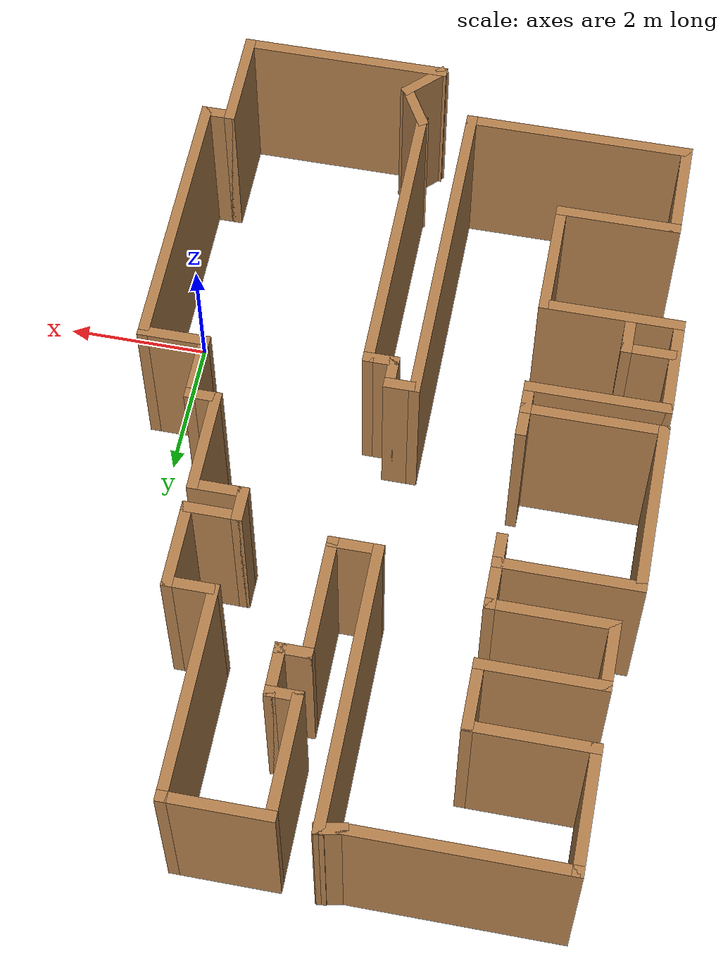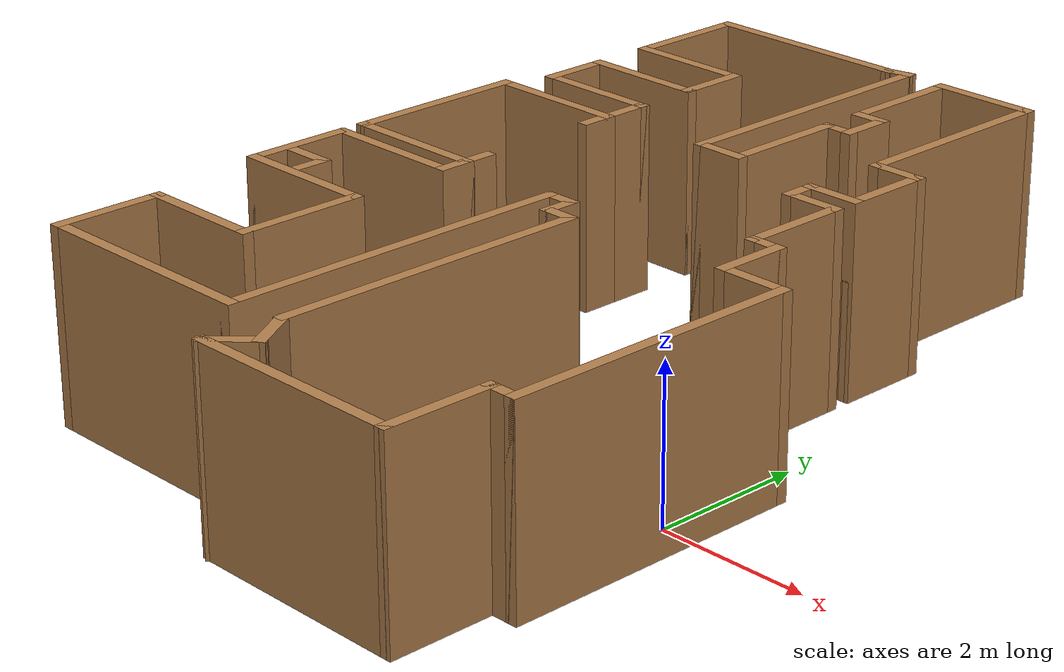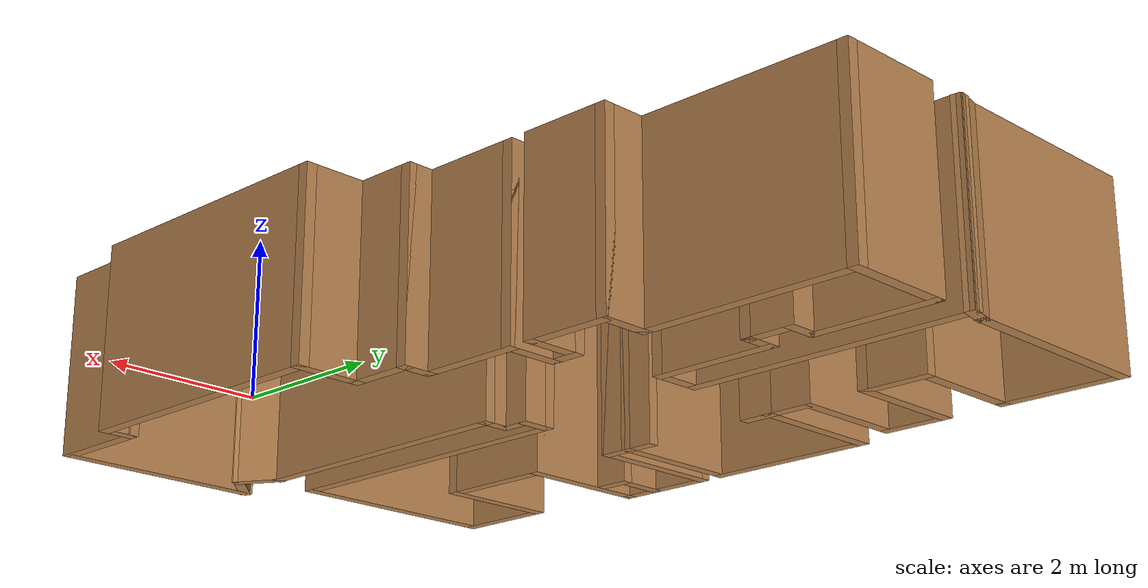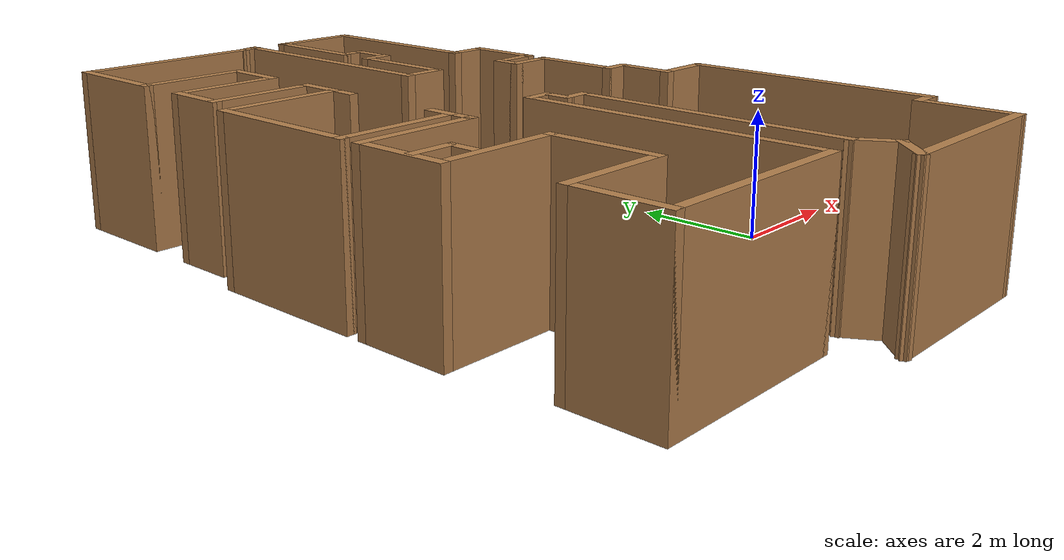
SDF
<?xml version='1.0'?>
<sdf version='1.6'>
  <model name='map_84'>
    <pose frame=''>-3.1757 2.03149 0 0 -0 0</pose>
    <link name='Wall_0'>
      <collision name='Wall_0_Collision'>
        <geometry>
          <box>
            <size>3 0.15 2.5</size>
          </box>
        </geometry>
        <pose frame=''>0 0 1.25 0 -0 0</pose>
      </collision>
      <visual name='Wall_0_Visual'>
        <pose frame=''>0 0 1.25 0 -0 0</pose>
        <geometry>
          <box>
            <size>3 0.15 2.5</size>
          </box>
        </geometry>
        <material>
          <script>
            <uri>file://media/materials/scripts/gazebo.material</uri>
            <name>Gazebo/Wood</name>
          </script>
          <ambient>1 1 1 1</ambient>
        </material>
        <meta>
          <layer>0</layer>
        </meta>
      </visual>
      <pose frame=''>-1.88787 5.82769 0 0 -0 3.14159</pose>
    </link>
    <link name='Wall_1'>
      <collision name='Wall_1_Collision'>
        <geometry>
          <box>
            <size>1.75 0.15 2.5</size>
          </box>
        </geometry>
        <pose frame=''>0 0 1.25 0 -0 0</pose>
      </collision>
      <visual name='Wall_1_Visual'>
        <pose frame=''>0 0 1.25 0 -0 0</pose>
        <geometry>
          <box>
            <size>1.75 0.15 2.5</size>
          </box>
        </geometry>
        <material>
          <script>
            <uri>file://media/materials/scripts/gazebo.material</uri>
            <name>Gazebo/Wood</name>
          </script>
          <ambient>1 1 1 1</ambient>
        </material>
        <meta>
          <layer>0</layer>
        </meta>
      </visual>
      <pose frame=''>-3.31287 5.02769 0 0 -0 -1.5708</pose>
    </link>
    <link name='Wall_10'>
      <collision name='Wall_10_Collision'>
        <geometry>
          <box>
            <size>2 0.15 2.5</size>
          </box>
        </geometry>
        <pose frame=''>0 0 1.25 0 -0 0</pose>
      </collision>
      <visual name='Wall_10_Visual'>
        <pose frame=''>0 0 1.25 0 -0 0</pose>
        <geometry>
          <box>
            <size>2 0.15 2.5</size>
          </box>
        </geometry>
        <material>
          <script>
            <uri>file://media/materials/scripts/gazebo.material</uri>
            <name>Gazebo/Wood</name>
          </script>
          <ambient>1 1 1 1</ambient>
        </material>
        <meta>
          <layer>0</layer>
        </meta>
      </visual>
      <pose frame=''>-2.63787 -0.422313 0 0 -0 0</pose>
    </link>
    <link name='Wall_11'>
      <collision name='Wall_11_Collision'>
        <geometry>
          <box>
            <size>0.5 0.15 2.5</size>
          </box>
        </geometry>
        <pose frame=''>0 0 1.25 0 -0 0</pose>
      </collision>
      <visual name='Wall_11_Visual'>
        <pose frame=''>0 0 1.25 0 -0 0</pose>
        <geometry>
          <box>
            <size>0.5 0.15 2.5</size>
          </box>
        </geometry>
        <material>
          <script>
            <uri>file://media/materials/scripts/gazebo.material</uri>
            <name>Gazebo/Wood</name>
          </script>
          <ambient>1 1 1 1</ambient>
        </material>
        <meta>
          <layer>0</layer>
        </meta>
      </visual>
      <pose frame=''>-1.71287 -0.597313 0 0 -0 -1.5708</pose>
    </link>
    <link name='Wall_12'>
      <collision name='Wall_12_Collision'>
        <geometry>
          <box>
            <size>2 0.15 2.5</size>
          </box>
        </geometry>
        <pose frame=''>0 0 1.25 0 -0 0</pose>
      </collision>
      <visual name='Wall_12_Visual'>
        <pose frame=''>0 0 1.25 0 -0 0</pose>
        <geometry>
          <box>
            <size>2 0.15 2.5</size>
          </box>
        </geometry>
        <material>
          <script>
            <uri>file://media/materials/scripts/gazebo.material</uri>
            <name>Gazebo/Wood</name>
          </script>
          <ambient>1 1 1 1</ambient>
        </material>
        <meta>
          <layer>0</layer>
        </meta>
      </visual>
      <pose frame=''>-2.63787 -0.772313 0 0 -0 3.14159</pose>
    </link>
    <link name='Wall_13'>
      <collision name='Wall_13_Collision'>
        <geometry>
          <box>
            <size>1.5 0.15 2.5</size>
          </box>
        </geometry>
        <pose frame=''>0 0 1.25 0 -0 0</pose>
      </collision>
      <visual name='Wall_13_Visual'>
        <pose frame=''>0 0 1.25 0 -0 0</pose>
        <geometry>
          <box>
            <size>1.5 0.15 2.5</size>
          </box>
        </geometry>
        <material>
          <script>
            <uri>file://media/materials/scripts/gazebo.material</uri>
            <name>Gazebo/Wood</name>
          </script>
          <ambient>1 1 1 1</ambient>
        </material>
        <meta>
          <layer>0</layer>
        </meta>
      </visual>
      <pose frame=''>-3.56287 -1.44731 0 0 -0 -1.5708</pose>
    </link>
    <link name='Wall_14'>
      <collision name='Wall_14_Collision'>
        <geometry>
          <box>
            <size>2 0.15 2.5</size>
          </box>
        </geometry>
        <pose frame=''>0 0 1.25 0 -0 0</pose>
      </collision>
      <visual name='Wall_14_Visual'>
        <pose frame=''>0 0 1.25 0 -0 0</pose>
        <geometry>
          <box>
            <size>2 0.15 2.5</size>
          </box>
        </geometry>
        <material>
          <script>
            <uri>file://media/materials/scripts/gazebo.material</uri>
            <name>Gazebo/Wood</name>
          </script>
          <ambient>1 1 1 1</ambient>
        </material>
        <meta>
          <layer>0</layer>
        </meta>
      </visual>
      <pose frame=''>-2.63787 -2.12231 0 0 -0 0</pose>
    </link>
    <link name='Wall_17'>
      <collision name='Wall_17_Collision'>
        <geometry>
          <box>
            <size>1.75 0.15 2.5</size>
          </box>
        </geometry>
        <pose frame=''>0 0 1.25 0 -0 0</pose>
      </collision>
      <visual name='Wall_17_Visual'>
        <pose frame=''>0 0 1.25 0 -0 0</pose>
        <geometry>
          <box>
            <size>1.75 0.15 2.5</size>
          </box>
        </geometry>
        <material>
          <script>
            <uri>file://media/materials/scripts/gazebo.material</uri>
            <name>Gazebo/Wood</name>
          </script>
          <ambient>1 1 1 1</ambient>
        </material>
        <meta>
          <layer>0</layer>
        </meta>
      </visual>
      <pose frame=''>-1.71287 -2.92231 0 0 -0 -1.5708</pose>
    </link>
    <link name='Wall_18'>
      <collision name='Wall_18_Collision'>
        <geometry>
          <box>
            <size>1.75 0.15 2.5</size>
          </box>
        </geometry>
        <pose frame=''>0 0 1.25 0 -0 0</pose>
      </collision>
      <visual name='Wall_18_Visual'>
        <pose frame=''>0 0 1.25 0 -0 0</pose>
        <geometry>
          <box>
            <size>1.75 0.15 2.5</size>
          </box>
        </geometry>
        <material>
          <script>
            <uri>file://media/materials/scripts/gazebo.material</uri>
            <name>Gazebo/Wood</name>
          </script>
          <ambient>1 1 1 1</ambient>
        </material>
        <meta>
          <layer>0</layer>
        </meta>
      </visual>
      <pose frame=''>-2.51287 -3.72231 0 0 -0 3.14159</pose>
    </link>
    <link name='Wall_19'>
      <collision name='Wall_19_Collision'>
        <geometry>
          <box>
            <size>1.5 0.15 2.5</size>
          </box>
        </geometry>
        <pose frame=''>0 0 1.25 0 -0 0</pose>
      </collision>
      <visual name='Wall_19_Visual'>
        <pose frame=''>0 0 1.25 0 -0 0</pose>
        <geometry>
          <box>
            <size>1.5 0.15 2.5</size>
          </box>
        </geometry>
        <material>
          <script>
            <uri>file://media/materials/scripts/gazebo.material</uri>
            <name>Gazebo/Wood</name>
          </script>
          <ambient>1 1 1 1</ambient>
        </material>
        <meta>
          <layer>0</layer>
        </meta>
      </visual>
      <pose frame=''>-3.31287 -4.39731 0 0 -0 -1.5708</pose>
    </link>
    <link name='Wall_2'>
      <collision name='Wall_2_Collision'>
        <geometry>
          <box>
            <size>1.75 0.15 2.5</size>
          </box>
        </geometry>
        <pose frame=''>0 0 1.25 0 -0 0</pose>
      </collision>
      <visual name='Wall_2_Visual'>
        <pose frame=''>0 0 1.25 0 -0 0</pose>
        <geometry>
          <box>
            <size>1.75 0.15 2.5</size>
          </box>
        </geometry>
        <material>
          <script>
            <uri>file://media/materials/scripts/gazebo.material</uri>
            <name>Gazebo/Wood</name>
          </script>
          <ambient>1 1 1 1</ambient>
        </material>
        <meta>
          <layer>0</layer>
        </meta>
      </visual>
      <pose frame=''>-2.51287 4.22769 0 0 -0 0</pose>
    </link>
    <link name='Wall_20'>
      <collision name='Wall_20_Collision'>
        <geometry>
          <box>
            <size>3.25 0.15 2.5</size>
          </box>
        </geometry>
        <pose frame=''>0 0 1.25 0 -0 0</pose>
      </collision>
      <visual name='Wall_20_Visual'>
        <pose frame=''>0 0 1.25 0 -0 0</pose>
        <geometry>
          <box>
            <size>3.25 0.15 2.5</size>
          </box>
        </geometry>
        <material>
          <script>
            <uri>file://media/materials/scripts/gazebo.material</uri>
            <name>Gazebo/Wood</name>
          </script>
          <ambient>1 1 1 1</ambient>
        </material>
        <meta>
          <layer>0</layer>
        </meta>
      </visual>
      <pose frame=''>-1.76287 -5.07231 0 0 -0 0</pose>
    </link>
    <link name='Wall_23'>
      <collision name='Wall_23_Collision'>
        <geometry>
          <box>
            <size>0.75 0.15 2.5</size>
          </box>
        </geometry>
        <pose frame=''>0 0 1.25 0 -0 0</pose>
      </collision>
      <visual name='Wall_23_Visual'>
        <pose frame=''>0 0 1.25 0 -0 0</pose>
        <geometry>
          <box>
            <size>0.75 0.15 2.5</size>
          </box>
        </geometry>
        <material>
          <script>
            <uri>file://media/materials/scripts/gazebo.material</uri>
            <name>Gazebo/Wood</name>
          </script>
          <ambient>1 1 1 1</ambient>
        </material>
        <meta>
          <layer>0</layer>
        </meta>
      </visual>
      <pose frame=''>-3.20614 -1.62308 0 0 -0 0</pose>
    </link>
    <link name='Wall_24'>
      <collision name='Wall_24_Collision'>
        <geometry>
          <box>
            <size>0.5 0.15 2.5</size>
          </box>
        </geometry>
        <pose frame=''>0 0 1.25 0 -0 0</pose>
      </collision>
      <visual name='Wall_24_Visual'>
        <pose frame=''>0 0 1.25 0 -0 0</pose>
        <geometry>
          <box>
            <size>0.5 0.15 2.5</size>
          </box>
        </geometry>
        <material>
          <script>
            <uri>file://media/materials/scripts/gazebo.material</uri>
            <name>Gazebo/Wood</name>
          </script>
          <ambient>1 1 1 1</ambient>
        </material>
        <meta>
          <layer>0</layer>
        </meta>
      </visual>
      <pose frame=''>-2.90614 -1.79808 0 0 -0 -1.5708</pose>
    </link>
    <link name='Wall_28'>
      <collision name='Wall_28_Collision'>
        <geometry>
          <box>
            <size>4.75 0.15 2.5</size>
          </box>
        </geometry>
        <pose frame=''>0 0 1.25 0 -0 0</pose>
      </collision>
      <visual name='Wall_28_Visual'>
        <pose frame=''>0 0 1.25 0 -0 0</pose>
        <geometry>
          <box>
            <size>4.75 0.15 2.5</size>
          </box>
        </geometry>
        <material>
          <script>
            <uri>file://media/materials/scripts/gazebo.material</uri>
            <name>Gazebo/Wood</name>
          </script>
          <ambient>1 1 1 1</ambient>
        </material>
        <meta>
          <layer>0</layer>
        </meta>
      </visual>
      <pose frame=''>-0.212868 -2.77231 0 0 -0 1.5708</pose>
    </link>
    <link name='Wall_29'>
      <collision name='Wall_29_Collision'>
        <geometry>
          <box>
            <size>0.5 0.15 2.5</size>
          </box>
        </geometry>
        <pose frame=''>0 0 1.25 0 -0 0</pose>
      </collision>
      <visual name='Wall_29_Visual'>
        <pose frame=''>0 0 1.25 0 -0 0</pose>
        <geometry>
          <box>
            <size>0.5 0.15 2.5</size>
          </box>
        </geometry>
        <material>
          <script>
            <uri>file://media/materials/scripts/gazebo.material</uri>
            <name>Gazebo/Wood</name>
          </script>
          <ambient>1 1 1 1</ambient>
        </material>
        <meta>
          <layer>0</layer>
        </meta>
      </visual>
      <pose frame=''>-0.037868 -0.472313 0 0 -0 0</pose>
    </link>
    <link name='Wall_3'>
      <collision name='Wall_3_Collision'>
        <geometry>
          <box>
            <size>1 0.15 2.5</size>
          </box>
        </geometry>
        <pose frame=''>0 0 1.25 0 -0 0</pose>
      </collision>
      <visual name='Wall_3_Visual'>
        <pose frame=''>0 0 1.25 0 -0 0</pose>
        <geometry>
          <box>
            <size>1 0.15 2.5</size>
          </box>
        </geometry>
        <material>
          <script>
            <uri>file://media/materials/scripts/gazebo.material</uri>
            <name>Gazebo/Wood</name>
          </script>
          <ambient>1 1 1 1</ambient>
        </material>
        <meta>
          <layer>0</layer>
        </meta>
      </visual>
      <pose frame=''>-1.71287 3.80269 0 0 -0 -1.5708</pose>
    </link>
    <link name='Wall_30'>
      <collision name='Wall_30_Collision'>
        <geometry>
          <box>
            <size>0.5 0.15 2.5</size>
          </box>
        </geometry>
        <pose frame=''>0 0 1.25 0 -0 0</pose>
      </collision>
      <visual name='Wall_30_Visual'>
        <pose frame=''>0 0 1.25 0 -0 0</pose>
        <geometry>
          <box>
            <size>0.5 0.15 2.5</size>
          </box>
        </geometry>
        <material>
          <script>
            <uri>file://media/materials/scripts/gazebo.material</uri>
            <name>Gazebo/Wood</name>
          </script>
          <ambient>1 1 1 1</ambient>
        </material>
        <meta>
          <layer>0</layer>
        </meta>
      </visual>
      <pose frame=''>0.137132 -0.647313 0 0 -0 -1.5708</pose>
    </link>
    <link name='Wall_31'>
      <collision name='Wall_31_Collision'>
        <geometry>
          <box>
            <size>0.5 0.15 2.5</size>
          </box>
        </geometry>
        <pose frame=''>0 0 1.25 0 -0 0</pose>
      </collision>
      <visual name='Wall_31_Visual'>
        <pose frame=''>0 0 1.25 0 -0 0</pose>
        <geometry>
          <box>
            <size>0.5 0.15 2.5</size>
          </box>
        </geometry>
        <material>
          <script>
            <uri>file://media/materials/scripts/gazebo.material</uri>
            <name>Gazebo/Wood</name>
          </script>
          <ambient>1 1 1 1</ambient>
        </material>
        <meta>
          <layer>0</layer>
        </meta>
      </visual>
      <pose frame=''>0.312132 -0.822313 0 0 -0 0</pose>
    </link>
    <link name='Wall_32'>
      <collision name='Wall_32_Collision'>
        <geometry>
          <box>
            <size>4.25 0.15 2.5</size>
          </box>
        </geometry>
        <pose frame=''>0 0 1.25 0 -0 0</pose>
      </collision>
      <visual name='Wall_32_Visual'>
        <pose frame=''>0 0 1.25 0 -0 0</pose>
        <geometry>
          <box>
            <size>4.25 0.15 2.5</size>
          </box>
        </geometry>
        <material>
          <script>
            <uri>file://media/materials/scripts/gazebo.material</uri>
            <name>Gazebo/Wood</name>
          </script>
          <ambient>1 1 1 1</ambient>
        </material>
        <meta>
          <layer>0</layer>
        </meta>
      </visual>
      <pose frame=''>0.487132 -2.87231 0 0 -0 -1.5708</pose>
    </link>
    <link name='Wall_37'>
      <collision name='Wall_37_Collision'>
        <geometry>
          <box>
            <size>0.75 0.15 2.5</size>
          </box>
        </geometry>
        <pose frame=''>0 0 1.25 0 -0 0</pose>
      </collision>
      <visual name='Wall_37_Visual'>
        <pose frame=''>0 0 1.25 0 -0 0</pose>
        <geometry>
          <box>
            <size>0.75 0.15 2.5</size>
          </box>
        </geometry>
        <material>
          <script>
            <uri>file://media/materials/scripts/gazebo.material</uri>
            <name>Gazebo/Wood</name>
          </script>
          <ambient>1 1 1 1</ambient>
        </material>
        <meta>
          <layer>0</layer>
        </meta>
      </visual>
      <pose frame=''>0.637132 -5.18212 0 0 -0 -1.0472</pose>
    </link>
    <link name='Wall_38'>
      <collision name='Wall_38_Collision'>
        <geometry>
          <box>
            <size>0.75 0.15 2.5</size>
          </box>
        </geometry>
        <pose frame=''>0 0 1.25 0 -0 0</pose>
      </collision>
      <visual name='Wall_38_Visual'>
        <pose frame=''>0 0 1.25 0 -0 0</pose>
        <geometry>
          <box>
            <size>0.75 0.15 2.5</size>
          </box>
        </geometry>
        <material>
          <script>
            <uri>file://media/materials/scripts/gazebo.material</uri>
            <name>Gazebo/Wood</name>
          </script>
          <ambient>1 1 1 1</ambient>
        </material>
        <meta>
          <layer>0</layer>
        </meta>
      </visual>
      <pose frame=''>0.575 -5.65406 0 0 -0 -2.35619</pose>
    </link>
    <link name='Wall_39'>
      <collision name='Wall_39_Collision'>
        <geometry>
          <box>
            <size>3 0.15 2.5</size>
          </box>
        </geometry>
        <pose frame=''>0 0 1.25 0 -0 0</pose>
      </collision>
      <visual name='Wall_39_Visual'>
        <pose frame=''>0 0 1.25 0 -0 0</pose>
        <geometry>
          <box>
            <size>3 0.15 2.5</size>
          </box>
        </geometry>
        <material>
          <script>
            <uri>file://media/materials/scripts/gazebo.material</uri>
            <name>Gazebo/Wood</name>
          </script>
          <ambient>1 1 1 1</ambient>
        </material>
        <meta>
          <layer>0</layer>
        </meta>
      </visual>
      <pose frame=''>1.78787 -5.86619 0 0 -0 0</pose>
    </link>
    <link name='Wall_4'>
      <collision name='Wall_4_Collision'>
        <geometry>
          <box>
            <size>1.75 0.15 2.5</size>
          </box>
        </geometry>
        <pose frame=''>0 0 1.25 0 -0 0</pose>
      </collision>
      <visual name='Wall_4_Visual'>
        <pose frame=''>0 0 1.25 0 -0 0</pose>
        <geometry>
          <box>
            <size>1.75 0.15 2.5</size>
          </box>
        </geometry>
        <material>
          <script>
            <uri>file://media/materials/scripts/gazebo.material</uri>
            <name>Gazebo/Wood</name>
          </script>
          <ambient>1 1 1 1</ambient>
        </material>
        <meta>
          <layer>0</layer>
        </meta>
      </visual>
      <pose frame=''>-2.51287 3.37769 0 0 -0 3.14159</pose>
    </link>
    <link name='Wall_40'>
      <collision name='Wall_40_Collision'>
        <geometry>
          <box>
            <size>1.5 0.15 2.5</size>
          </box>
        </geometry>
        <pose frame=''>0 0 1.25 0 -0 0</pose>
      </collision>
      <visual name='Wall_40_Visual'>
        <pose frame=''>0 0 1.25 0 -0 0</pose>
        <geometry>
          <box>
            <size>1.5 0.15 2.5</size>
          </box>
        </geometry>
        <material>
          <script>
            <uri>file://media/materials/scripts/gazebo.material</uri>
            <name>Gazebo/Wood</name>
          </script>
          <ambient>1 1 1 1</ambient>
        </material>
        <meta>
          <layer>0</layer>
        </meta>
      </visual>
      <pose frame=''>3.21287 -5.19119 0 0 -0 1.5708</pose>
    </link>
    <link name='Wall_41'>
      <collision name='Wall_41_Collision'>
        <geometry>
          <box>
            <size>0.5 0.15 2.5</size>
          </box>
        </geometry>
        <pose frame=''>0 0 1.25 0 -0 0</pose>
      </collision>
      <visual name='Wall_41_Visual'>
        <pose frame=''>0 0 1.25 0 -0 0</pose>
        <geometry>
          <box>
            <size>0.5 0.15 2.5</size>
          </box>
        </geometry>
        <material>
          <script>
            <uri>file://media/materials/scripts/gazebo.material</uri>
            <name>Gazebo/Wood</name>
          </script>
          <ambient>1 1 1 1</ambient>
        </material>
        <meta>
          <layer>0</layer>
        </meta>
      </visual>
      <pose frame=''>3.38787 -4.51619 0 0 -0 0</pose>
    </link>
    <link name='Wall_42'>
      <collision name='Wall_42_Collision'>
        <geometry>
          <box>
            <size>4 0.15 2.5</size>
          </box>
        </geometry>
        <pose frame=''>0 0 1.25 0 -0 0</pose>
      </collision>
      <visual name='Wall_42_Visual'>
        <pose frame=''>0 0 1.25 0 -0 0</pose>
        <geometry>
          <box>
            <size>4 0.15 2.5</size>
          </box>
        </geometry>
        <material>
          <script>
            <uri>file://media/materials/scripts/gazebo.material</uri>
            <name>Gazebo/Wood</name>
          </script>
          <ambient>1 1 1 1</ambient>
        </material>
        <meta>
          <layer>0</layer>
        </meta>
      </visual>
      <pose frame=''>3.56287 -2.59119 0 0 -0 1.5708</pose>
    </link>
    <link name='Wall_43'>
      <collision name='Wall_43_Collision'>
        <geometry>
          <box>
            <size>1 0.15 2.5</size>
          </box>
        </geometry>
        <pose frame=''>0 0 1.25 0 -0 0</pose>
      </collision>
      <visual name='Wall_43_Visual'>
        <pose frame=''>0 0 1.25 0 -0 0</pose>
        <geometry>
          <box>
            <size>1 0.15 2.5</size>
          </box>
        </geometry>
        <material>
          <script>
            <uri>file://media/materials/scripts/gazebo.material</uri>
            <name>Gazebo/Wood</name>
          </script>
          <ambient>1 1 1 1</ambient>
        </material>
        <meta>
          <layer>0</layer>
        </meta>
      </visual>
      <pose frame=''>3.13787 -0.666192 0 0 -0 3.14159</pose>
    </link>
    <link name='Wall_44'>
      <collision name='Wall_44_Collision'>
        <geometry>
          <box>
            <size>1 0.15 2.5</size>
          </box>
        </geometry>
        <pose frame=''>0 0 1.25 0 -0 0</pose>
      </collision>
      <visual name='Wall_44_Visual'>
        <pose frame=''>0 0 1.25 0 -0 0</pose>
        <geometry>
          <box>
            <size>1 0.15 2.5</size>
          </box>
        </geometry>
        <material>
          <script>
            <uri>file://media/materials/scripts/gazebo.material</uri>
            <name>Gazebo/Wood</name>
          </script>
          <ambient>1 1 1 1</ambient>
        </material>
        <meta>
          <layer>0</layer>
        </meta>
      </visual>
      <pose frame=''>2.71287 -0.241192 0 0 -0 1.5708</pose>
    </link>
    <link name='Wall_45'>
      <collision name='Wall_45_Collision'>
        <geometry>
          <box>
            <size>0.5 0.15 2.5</size>
          </box>
        </geometry>
        <pose frame=''>0 0 1.25 0 -0 0</pose>
      </collision>
      <visual name='Wall_45_Visual'>
        <pose frame=''>0 0 1.25 0 -0 0</pose>
        <geometry>
          <box>
            <size>0.5 0.15 2.5</size>
          </box>
        </geometry>
        <material>
          <script>
            <uri>file://media/materials/scripts/gazebo.material</uri>
            <name>Gazebo/Wood</name>
          </script>
          <ambient>1 1 1 1</ambient>
        </material>
        <meta>
          <layer>0</layer>
        </meta>
      </visual>
      <pose frame=''>2.53787 0.183808 0 0 -0 3.14159</pose>
    </link>
    <link name='Wall_46'>
      <collision name='Wall_46_Collision'>
        <geometry>
          <box>
            <size>1.5 0.15 2.5</size>
          </box>
        </geometry>
        <pose frame=''>0 0 1.25 0 -0 0</pose>
      </collision>
      <visual name='Wall_46_Visual'>
        <pose frame=''>0 0 1.25 0 -0 0</pose>
        <geometry>
          <box>
            <size>1.5 0.15 2.5</size>
          </box>
        </geometry>
        <material>
          <script>
            <uri>file://media/materials/scripts/gazebo.material</uri>
            <name>Gazebo/Wood</name>
          </script>
          <ambient>1 1 1 1</ambient>
        </material>
        <meta>
          <layer>0</layer>
        </meta>
      </visual>
      <pose frame=''>2.36287 0.858808 0 0 -0 1.5708</pose>
    </link>
    <link name='Wall_5'>
      <collision name='Wall_5_Collision'>
        <geometry>
          <box>
            <size>1 0.15 2.5</size>
          </box>
        </geometry>
        <pose frame=''>0 0 1.25 0 -0 0</pose>
      </collision>
      <visual name='Wall_5_Visual'>
        <pose frame=''>0 0 1.25 0 -0 0</pose>
        <geometry>
          <box>
            <size>1 0.15 2.5</size>
          </box>
        </geometry>
        <material>
          <script>
            <uri>file://media/materials/scripts/gazebo.material</uri>
            <name>Gazebo/Wood</name>
          </script>
          <ambient>1 1 1 1</ambient>
        </material>
        <meta>
          <layer>0</layer>
        </meta>
      </visual>
      <pose frame=''>-3.31287 2.95269 0 0 -0 -1.5708</pose>
    </link>
    <link name='Wall_50'>
      <collision name='Wall_50_Collision'>
        <geometry>
          <box>
            <size>1.25 0.15 2.5</size>
          </box>
        </geometry>
        <pose frame=''>0 0 1.25 0 -0 0</pose>
      </collision>
      <visual name='Wall_50_Visual'>
        <pose frame=''>0 0 1.25 0 -0 0</pose>
        <geometry>
          <box>
            <size>1.25 0.15 2.5</size>
          </box>
        </geometry>
        <material>
          <script>
            <uri>file://media/materials/scripts/gazebo.material</uri>
            <name>Gazebo/Wood</name>
          </script>
          <ambient>1 1 1 1</ambient>
        </material>
        <meta>
          <layer>0</layer>
        </meta>
      </visual>
      <pose frame=''>2.36287 2.43381 0 0 -0 1.5708</pose>
    </link>
    <link name='Wall_51'>
      <collision name='Wall_51_Collision'>
        <geometry>
          <box>
            <size>0.75 0.15 2.5</size>
          </box>
        </geometry>
        <pose frame=''>0 0 1.25 0 -0 0</pose>
      </collision>
      <visual name='Wall_51_Visual'>
        <pose frame=''>0 0 1.25 0 -0 0</pose>
        <geometry>
          <box>
            <size>0.75 0.15 2.5</size>
          </box>
        </geometry>
        <material>
          <script>
            <uri>file://media/materials/scripts/gazebo.material</uri>
            <name>Gazebo/Wood</name>
          </script>
          <ambient>1 1 1 1</ambient>
        </material>
        <meta>
          <layer>0</layer>
        </meta>
      </visual>
      <pose frame=''>2.06287 2.98381 0 0 -0 3.14159</pose>
    </link>
    <link name='Wall_52'>
      <collision name='Wall_52_Collision'>
        <geometry>
          <box>
            <size>3 0.15 2.5</size>
          </box>
        </geometry>
        <pose frame=''>0 0 1.25 0 -0 0</pose>
      </collision>
      <visual name='Wall_52_Visual'>
        <pose frame=''>0 0 1.25 0 -0 0</pose>
        <geometry>
          <box>
            <size>3 0.15 2.5</size>
          </box>
        </geometry>
        <material>
          <script>
            <uri>file://media/materials/scripts/gazebo.material</uri>
            <name>Gazebo/Wood</name>
          </script>
          <ambient>1 1 1 1</ambient>
        </material>
        <meta>
          <layer>0</layer>
        </meta>
      </visual>
      <pose frame=''>1.76287 4.40881 0 0 -0 1.5708</pose>
    </link>
    <link name='Wall_53'>
      <collision name='Wall_53_Collision'>
        <geometry>
          <box>
            <size>1.5 0.15 2.5</size>
          </box>
        </geometry>
        <pose frame=''>0 0 1.25 0 -0 0</pose>
      </collision>
      <visual name='Wall_53_Visual'>
        <pose frame=''>0 0 1.25 0 -0 0</pose>
        <geometry>
          <box>
            <size>1.5 0.15 2.5</size>
          </box>
        </geometry>
        <material>
          <script>
            <uri>file://media/materials/scripts/gazebo.material</uri>
            <name>Gazebo/Wood</name>
          </script>
          <ambient>1 1 1 1</ambient>
        </material>
        <meta>
          <layer>0</layer>
        </meta>
      </visual>
      <pose frame=''>1.08787 5.83381 0 0 -0 3.14159</pose>
    </link>
    <link name='Wall_54'>
      <collision name='Wall_54_Collision'>
        <geometry>
          <box>
            <size>1.75 0.15 2.5</size>
          </box>
        </geometry>
        <pose frame=''>0 0 1.25 0 -0 0</pose>
      </collision>
      <visual name='Wall_54_Visual'>
        <pose frame=''>0 0 1.25 0 -0 0</pose>
        <geometry>
          <box>
            <size>1.75 0.15 2.5</size>
          </box>
        </geometry>
        <material>
          <script>
            <uri>file://media/materials/scripts/gazebo.material</uri>
            <name>Gazebo/Wood</name>
          </script>
          <ambient>1 1 1 1</ambient>
        </material>
        <meta>
          <layer>0</layer>
        </meta>
      </visual>
      <pose frame=''>0.412868 5.03381 0 0 -0 -1.5708</pose>
    </link>
    <link name='Wall_55'>
      <collision name='Wall_55_Collision'>
        <geometry>
          <box>
            <size>0.5 0.15 2.5</size>
          </box>
        </geometry>
        <pose frame=''>0 0 1.25 0 -0 0</pose>
      </collision>
      <visual name='Wall_55_Visual'>
        <pose frame=''>0 0 1.25 0 -0 0</pose>
        <geometry>
          <box>
            <size>0.5 0.15 2.5</size>
          </box>
        </geometry>
        <material>
          <script>
            <uri>file://media/materials/scripts/gazebo.material</uri>
            <name>Gazebo/Wood</name>
          </script>
          <ambient>1 1 1 1</ambient>
        </material>
        <meta>
          <layer>0</layer>
        </meta>
      </visual>
      <pose frame=''>0.587868 4.23381 0 0 -0 0</pose>
    </link>
    <link name='Wall_56'>
      <collision name='Wall_56_Collision'>
        <geometry>
          <box>
            <size>0.75 0.15 2.5</size>
          </box>
        </geometry>
        <pose frame=''>0 0 1.25 0 -0 0</pose>
      </collision>
      <visual name='Wall_56_Visual'>
        <pose frame=''>0 0 1.25 0 -0 0</pose>
        <geometry>
          <box>
            <size>0.75 0.15 2.5</size>
          </box>
        </geometry>
        <material>
          <script>
            <uri>file://media/materials/scripts/gazebo.material</uri>
            <name>Gazebo/Wood</name>
          </script>
          <ambient>1 1 1 1</ambient>
        </material>
        <meta>
          <layer>0</layer>
        </meta>
      </visual>
      <pose frame=''>0.762868 3.93381 0 0 -0 -1.5708</pose>
    </link>
    <link name='Wall_57'>
      <collision name='Wall_57_Collision'>
        <geometry>
          <box>
            <size>0.5 0.15 2.5</size>
          </box>
        </geometry>
        <pose frame=''>0 0 1.25 0 -0 0</pose>
      </collision>
      <visual name='Wall_57_Visual'>
        <pose frame=''>0 0 1.25 0 -0 0</pose>
        <geometry>
          <box>
            <size>0.5 0.15 2.5</size>
          </box>
        </geometry>
        <material>
          <script>
            <uri>file://media/materials/scripts/gazebo.material</uri>
            <name>Gazebo/Wood</name>
          </script>
          <ambient>1 1 1 1</ambient>
        </material>
        <meta>
          <layer>0</layer>
        </meta>
      </visual>
      <pose frame=''>0.587868 3.63381 0 0 -0 3.14159</pose>
    </link>
    <link name='Wall_58'>
      <collision name='Wall_58_Collision'>
        <geometry>
          <box>
            <size>1.75 0.15 2.5</size>
          </box>
        </geometry>
        <pose frame=''>0 0 1.25 0 -0 0</pose>
      </collision>
      <visual name='Wall_58_Visual'>
        <pose frame=''>0 0 1.25 0 -0 0</pose>
        <geometry>
          <box>
            <size>1.75 0.15 2.5</size>
          </box>
        </geometry>
        <material>
          <script>
            <uri>file://media/materials/scripts/gazebo.material</uri>
            <name>Gazebo/Wood</name>
          </script>
          <ambient>1 1 1 1</ambient>
        </material>
        <meta>
          <layer>0</layer>
        </meta>
      </visual>
      <pose frame=''>0.412868 2.83381 0 0 -0 -1.5708</pose>
    </link>
    <link name='Wall_59'>
      <collision name='Wall_59_Collision'>
        <geometry>
          <box>
            <size>0.75 0.15 2.5</size>
          </box>
        </geometry>
        <pose frame=''>0 0 1.25 0 -0 0</pose>
      </collision>
      <visual name='Wall_59_Visual'>
        <pose frame=''>0 0 1.25 0 -0 0</pose>
        <geometry>
          <box>
            <size>0.75 0.15 2.5</size>
          </box>
        </geometry>
        <material>
          <script>
            <uri>file://media/materials/scripts/gazebo.material</uri>
            <name>Gazebo/Wood</name>
          </script>
          <ambient>1 1 1 1</ambient>
        </material>
        <meta>
          <layer>0</layer>
        </meta>
      </visual>
      <pose frame=''>0.112868 2.03381 0 0 -0 3.14159</pose>
    </link>
    <link name='Wall_6'>
      <collision name='Wall_6_Collision'>
        <geometry>
          <box>
            <size>1.75 0.15 2.5</size>
          </box>
        </geometry>
        <pose frame=''>0 0 1.25 0 -0 0</pose>
      </collision>
      <visual name='Wall_6_Visual'>
        <pose frame=''>0 0 1.25 0 -0 0</pose>
        <geometry>
          <box>
            <size>1.75 0.15 2.5</size>
          </box>
        </geometry>
        <material>
          <script>
            <uri>file://media/materials/scripts/gazebo.material</uri>
            <name>Gazebo/Wood</name>
          </script>
          <ambient>1 1 1 1</ambient>
        </material>
        <meta>
          <layer>0</layer>
        </meta>
      </visual>
      <pose frame=''>-2.51287 2.52769 0 0 -0 0</pose>
    </link>
    <link name='Wall_60'>
      <collision name='Wall_60_Collision'>
        <geometry>
          <box>
            <size>4 0.15 2.5</size>
          </box>
        </geometry>
        <pose frame=''>0 0 1.25 0 -0 0</pose>
      </collision>
      <visual name='Wall_60_Visual'>
        <pose frame=''>0 0 1.25 0 -0 0</pose>
        <geometry>
          <box>
            <size>4 0.15 2.5</size>
          </box>
        </geometry>
        <material>
          <script>
            <uri>file://media/materials/scripts/gazebo.material</uri>
            <name>Gazebo/Wood</name>
          </script>
          <ambient>1 1 1 1</ambient>
        </material>
        <meta>
          <layer>0</layer>
        </meta>
      </visual>
      <pose frame=''>-0.187132 3.95881 0 0 -0 1.5708</pose>
    </link>
    <link name='Wall_61'>
      <collision name='Wall_61_Collision'>
        <geometry>
          <box>
            <size>0.431389 0.15 2.5</size>
          </box>
        </geometry>
        <pose frame=''>0 0 1.25 0 -0 0</pose>
      </collision>
      <visual name='Wall_61_Visual'>
        <pose frame=''>0 0 1.25 0 -0 0</pose>
        <geometry>
          <box>
            <size>0.431389 0.15 2.5</size>
          </box>
        </geometry>
        <material>
          <script>
            <uri>file://media/materials/scripts/gazebo.material</uri>
            <name>Gazebo/Wood</name>
          </script>
          <ambient>1 1 1 1</ambient>
        </material>
        <meta>
          <layer>0</layer>
        </meta>
      </visual>
      <pose frame=''>-0.325 5.85575 0 0 -0 -2.94081</pose>
    </link>
    <link name='Wall_63'>
      <collision name='Wall_63_Collision'>
        <geometry>
          <box>
            <size>0.81996 0.15 2.5</size>
          </box>
        </geometry>
        <pose frame=''>0 0 1.25 0 -0 0</pose>
      </collision>
      <visual name='Wall_63_Visual'>
        <pose frame=''>0 0 1.25 0 -0 0</pose>
        <geometry>
          <box>
            <size>0.81996 0.15 2.5</size>
          </box>
        </geometry>
        <material>
          <script>
            <uri>file://media/materials/scripts/gazebo.material</uri>
            <name>Gazebo/Wood</name>
          </script>
          <ambient>1 1 1 1</ambient>
        </material>
        <meta>
          <layer>0</layer>
        </meta>
      </visual>
      <pose frame=''>2.02789 1.53381 0 0 -0 3.14159</pose>
    </link>
    <link name='Wall_67'>
      <collision name='Wall_67_Collision'>
        <geometry>
          <box>
            <size>0.5 0.15 2.5</size>
          </box>
        </geometry>
        <pose frame=''>0 0 1.25 0 -0 0</pose>
      </collision>
      <visual name='Wall_67_Visual'>
        <pose frame=''>0 0 1.25 0 -0 0</pose>
        <geometry>
          <box>
            <size>0.5 0.15 2.5</size>
          </box>
        </geometry>
        <material>
          <script>
            <uri>file://media/materials/scripts/gazebo.material</uri>
            <name>Gazebo/Wood</name>
          </script>
          <ambient>1 1 1 1</ambient>
        </material>
        <meta>
          <layer>0</layer>
        </meta>
      </visual>
      <pose frame=''>1.69291 1.70881 0 0 -0 1.5708</pose>
    </link>
    <link name='Wall_68'>
      <collision name='Wall_68_Collision'>
        <geometry>
          <box>
            <size>0.81996 0.15 2.5</size>
          </box>
        </geometry>
        <pose frame=''>0 0 1.25 0 -0 0</pose>
      </collision>
      <visual name='Wall_68_Visual'>
        <pose frame=''>0 0 1.25 0 -0 0</pose>
        <geometry>
          <box>
            <size>0.81996 0.15 2.5</size>
          </box>
        </geometry>
        <material>
          <script>
            <uri>file://media/materials/scripts/gazebo.material</uri>
            <name>Gazebo/Wood</name>
          </script>
          <ambient>1 1 1 1</ambient>
        </material>
        <meta>
          <layer>0</layer>
        </meta>
      </visual>
      <pose frame=''>2.02789 1.88381 0 0 -0 0</pose>
    </link>
    <link name='Wall_7'>
      <collision name='Wall_7_Collision'>
        <geometry>
          <box>
            <size>0.75 0.15 2.5</size>
          </box>
        </geometry>
        <pose frame=''>0 0 1.25 0 -0 0</pose>
      </collision>
      <visual name='Wall_7_Visual'>
        <pose frame=''>0 0 1.25 0 -0 0</pose>
        <geometry>
          <box>
            <size>0.75 0.15 2.5</size>
          </box>
        </geometry>
        <material>
          <script>
            <uri>file://media/materials/scripts/gazebo.material</uri>
            <name>Gazebo/Wood</name>
          </script>
          <ambient>1 1 1 1</ambient>
        </material>
        <meta>
          <layer>0</layer>
        </meta>
      </visual>
      <pose frame=''>-1.71287 2.22769 0 0 -0 -1.5708</pose>
    </link>
    <link name='Wall_70'>
      <collision name='Wall_70_Collision'>
        <geometry>
          <box>
            <size>0.5 0.15 2.5</size>
          </box>
        </geometry>
        <pose frame=''>0 0 1.25 0 -0 0</pose>
      </collision>
      <visual name='Wall_70_Visual'>
        <pose frame=''>0 0 1.25 0 -0 0</pose>
        <geometry>
          <box>
            <size>0.5 0.15 2.5</size>
          </box>
        </geometry>
        <material>
          <script>
            <uri>file://media/materials/scripts/gazebo.material</uri>
            <name>Gazebo/Wood</name>
          </script>
          <ambient>1 1 1 1</ambient>
        </material>
        <meta>
          <layer>0</layer>
        </meta>
      </visual>
      <pose frame=''>-1.71287 1.75269 0 0 -0 -1.5708</pose>
    </link>
    <link name='Wall_72'>
      <collision name='Wall_72_Collision'>
        <geometry>
          <box>
            <size>0.5 0.15 2.5</size>
          </box>
        </geometry>
        <pose frame=''>0 0 1.25 0 -0 0</pose>
      </collision>
      <visual name='Wall_72_Visual'>
        <pose frame=''>0 0 1.25 0 -0 0</pose>
        <geometry>
          <box>
            <size>0.5 0.15 2.5</size>
          </box>
        </geometry>
        <material>
          <script>
            <uri>file://media/materials/scripts/gazebo.material</uri>
            <name>Gazebo/Wood</name>
          </script>
          <ambient>1 1 1 1</ambient>
        </material>
        <meta>
          <layer>0</layer>
        </meta>
      </visual>
      <pose frame=''>-1.71287 -0.247313 0 0 -0 1.5708</pose>
    </link>
    <link name='Wall_8'>
      <collision name='Wall_8_Collision'>
        <geometry>
          <box>
            <size>2 0.15 2.5</size>
          </box>
        </geometry>
        <pose frame=''>0 0 1.25 0 -0 0</pose>
      </collision>
      <visual name='Wall_8_Visual'>
        <pose frame=''>0 0 1.25 0 -0 0</pose>
        <geometry>
          <box>
            <size>2 0.15 2.5</size>
          </box>
        </geometry>
        <material>
          <script>
            <uri>file://media/materials/scripts/gazebo.material</uri>
            <name>Gazebo/Wood</name>
          </script>
          <ambient>1 1 1 1</ambient>
        </material>
        <meta>
          <layer>0</layer>
        </meta>
      </visual>
      <pose frame=''>-2.63787 1.92769 0 0 -0 3.14159</pose>
    </link>
    <link name='Wall_9'>
      <collision name='Wall_9_Collision'>
        <geometry>
          <box>
            <size>2.5 0.15 2.5</size>
          </box>
        </geometry>
        <pose frame=''>0 0 1.25 0 -0 0</pose>
      </collision>
      <visual name='Wall_9_Visual'>
        <pose frame=''>0 0 1.25 0 -0 0</pose>
        <geometry>
          <box>
            <size>2.5 0.15 2.5</size>
          </box>
        </geometry>
        <material>
          <script>
            <uri>file://media/materials/scripts/gazebo.material</uri>
            <name>Gazebo/Wood</name>
          </script>
          <ambient>1 1 1 1</ambient>
        </material>
        <meta>
          <layer>0</layer>
        </meta>
      </visual>
      <pose frame=''>-3.56287 0.752687 0 0 -0 -1.5708</pose>
    </link>
    <static>1</static>
  </model>
</sdf>
